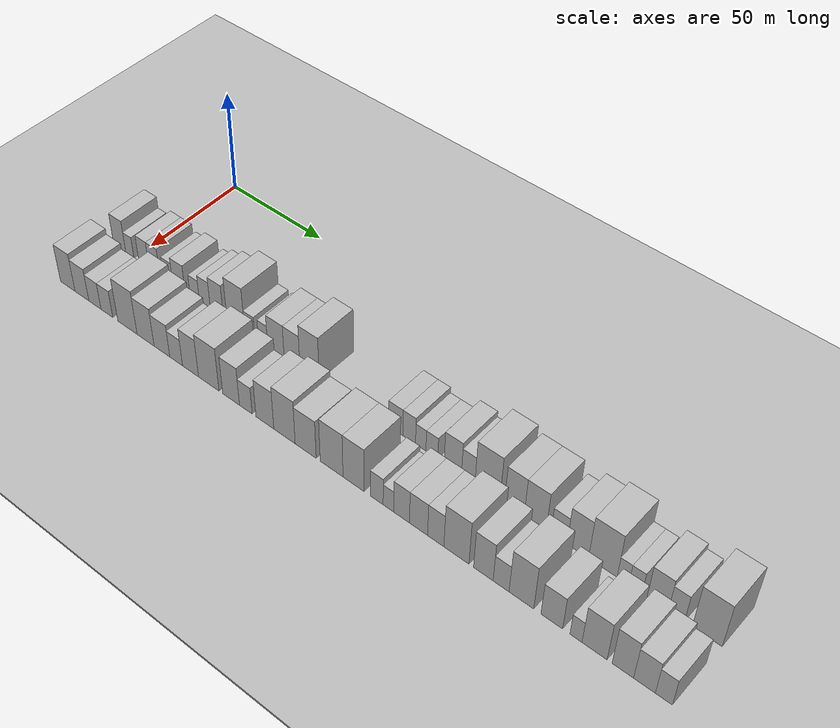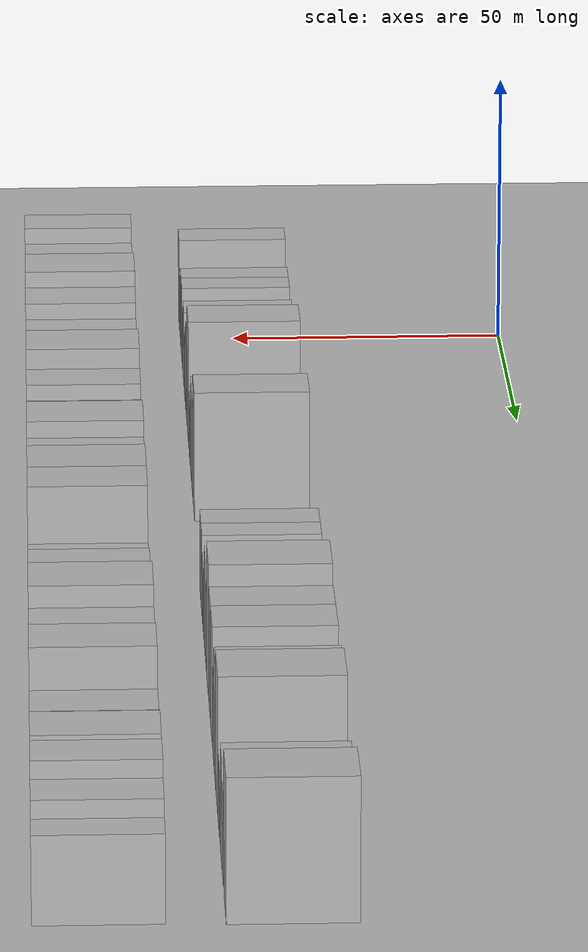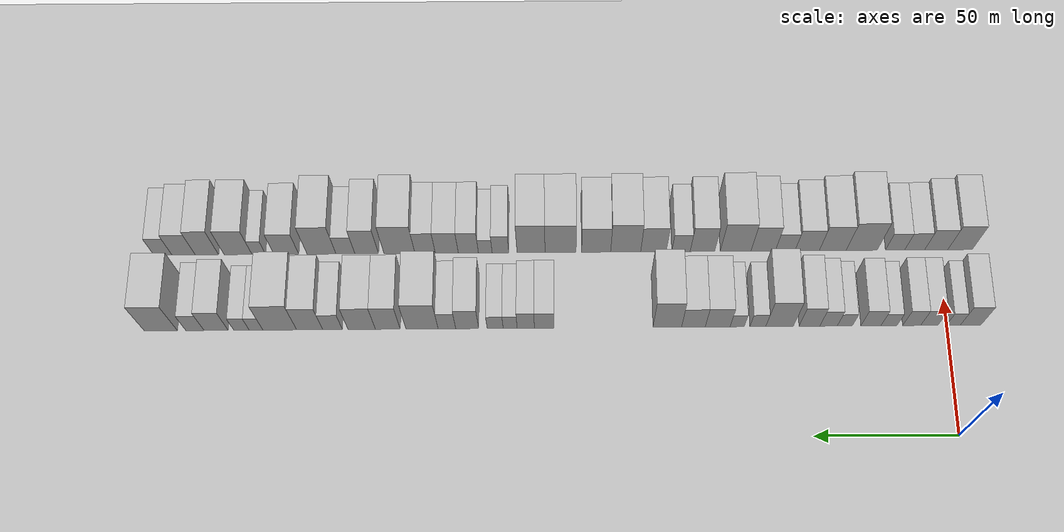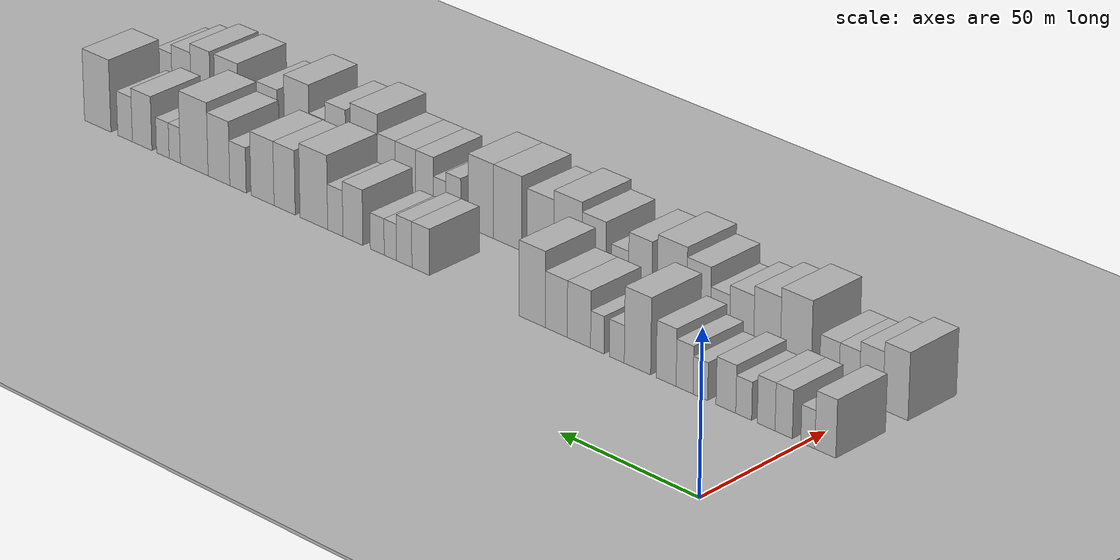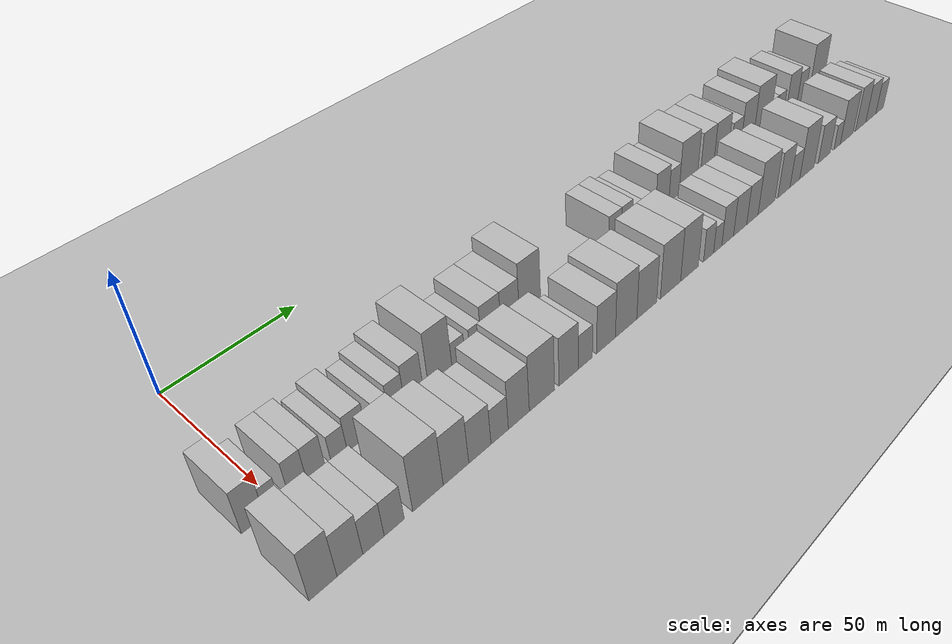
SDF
<sdf version="1.6">
 <world name="default">
  <include><name>ground_plane_1</name><uri>model://HANNAS_ground_plane</uri></include>
  <include>
   <name>ground_plane_2</name>
   <uri>model://HANNAS_ground_plane</uri>
   <pose>100 0 0  0 0 0</pose>
  </include>
  <model name="building_35">
   <static>1</static>
   <pose>50.0000 -8.4018 0 0.000000 0.000000 0.000000</pose>
   <link name="link">
    <pose>0 0 9.00 0 0 0</pose>
    <collision name="collision"><geometry><box><size>20.0000 7.3455 18.0000</size></box></geometry></collision>
    <visual name="visual">
     <cast_shadows>0</cast_shadows>
     <geometry><box><size>20.0000 7.3455 18.0000</size></box></geometry>
     <material>
      <script>
       <uri>model://HANNAS_wall/materials/scripts</uri>
       <uri>model://HANNAS_wall/materials/textures</uri>
       <name>vrc/HANNAS_wall</name>
      </script>
     </material>
    </visual>
   </link>
  </model>
  <model name="building_36">
   <static>1</static>
   <pose>50.0000 -2.2565 0 0.000000 0.000000 0.000000</pose>
   <link name="link">
    <pose>0 0 6.00 0 0 0</pose>
    <collision name="collision"><geometry><box><size>20.0000 4.9450 12.0000</size></box></geometry></collision>
    <visual name="visual">
     <cast_shadows>0</cast_shadows>
     <geometry><box><size>20.0000 4.9450 12.0000</size></box></geometry>
     <material>
      <script>
       <uri>model://HANNAS_wall/materials/scripts</uri>
       <uri>model://HANNAS_wall/materials/textures</uri>
       <name>vrc/HANNAS_wall</name>
      </script>
     </material>
    </visual>
   </link>
  </model>
  <model name="building_37">
   <static>1</static>
   <pose>50.0000 6.2791 0 0.000000 0.000000 0.000000</pose>
   <link name="link">
    <pose>0 0 7.50 0 0 0</pose>
    <collision name="collision"><geometry><box><size>20.0000 6.1263 15.0000</size></box></geometry></collision>
    <visual name="visual">
     <cast_shadows>0</cast_shadows>
     <geometry><box><size>20.0000 6.1263 15.0000</size></box></geometry>
     <material>
      <script>
       <uri>model://HANNAS_wall/materials/scripts</uri>
       <uri>model://HANNAS_wall/materials/textures</uri>
       <name>vrc/HANNAS_wall</name>
      </script>
     </material>
    </visual>
   </link>
  </model>
  <model name="building_38">
   <static>1</static>
   <pose>50.0000 12.5242 0 0.000000 0.000000 0.000000</pose>
   <link name="link">
    <pose>0 0 7.50 0 0 0</pose>
    <collision name="collision"><geometry><box><size>20.0000 6.3640 15.0000</size></box></geometry></collision>
    <visual name="visual">
     <cast_shadows>0</cast_shadows>
     <geometry><box><size>20.0000 6.3640 15.0000</size></box></geometry>
     <material>
      <script>
       <uri>model://HANNAS_wall/materials/scripts</uri>
       <uri>model://HANNAS_wall/materials/textures</uri>
       <name>vrc/HANNAS_wall</name>
      </script>
     </material>
    </visual>
   </link>
  </model>
  <model name="building_39">
   <static>1</static>
   <pose>50.0000 20.5519 0 0.000000 0.000000 0.000000</pose>
   <link name="link">
    <pose>0 0 6.00 0 0 0</pose>
    <collision name="collision"><geometry><box><size>20.0000 5.6913 12.0000</size></box></geometry></collision>
    <visual name="visual">
     <cast_shadows>0</cast_shadows>
     <geometry><box><size>20.0000 5.6913 12.0000</size></box></geometry>
     <material>
      <script>
       <uri>model://HANNAS_wall/materials/scripts</uri>
       <uri>model://HANNAS_wall/materials/textures</uri>
       <name>vrc/HANNAS_wall</name>
      </script>
     </material>
    </visual>
   </link>
  </model>
  <model name="building_40">
   <static>1</static>
   <pose>50.0000 26.9667 0 0.000000 0.000000 0.000000</pose>
   <link name="link">
    <pose>0 0 7.50 0 0 0</pose>
    <collision name="collision"><geometry><box><size>20.0000 7.1382 15.0000</size></box></geometry></collision>
    <visual name="visual">
     <cast_shadows>0</cast_shadows>
     <geometry><box><size>20.0000 7.1382 15.0000</size></box></geometry>
     <material>
      <script>
       <uri>model://HANNAS_wall/materials/scripts</uri>
       <uri>model://HANNAS_wall/materials/textures</uri>
       <name>vrc/HANNAS_wall</name>
      </script>
     </material>
    </visual>
   </link>
  </model>
  <model name="building_41">
   <static>1</static>
   <pose>50.0000 36.2160 0 0.000000 0.000000 0.000000</pose>
   <link name="link">
    <pose>0 0 6.00 0 0 0</pose>
    <collision name="collision"><geometry><box><size>20.0000 5.3605 12.0000</size></box></geometry></collision>
    <visual name="visual">
     <cast_shadows>0</cast_shadows>
     <geometry><box><size>20.0000 5.3605 12.0000</size></box></geometry>
     <material>
      <script>
       <uri>model://HANNAS_wall/materials/scripts</uri>
       <uri>model://HANNAS_wall/materials/textures</uri>
       <name>vrc/HANNAS_wall</name>
      </script>
     </material>
    </visual>
   </link>
  </model>
  <model name="building_42">
   <static>1</static>
   <pose>50.0000 41.9826 0 0.000000 0.000000 0.000000</pose>
   <link name="link">
    <pose>0 0 7.50 0 0 0</pose>
    <collision name="collision"><geometry><box><size>20.0000 6.1726 15.0000</size></box></geometry></collision>
    <visual name="visual">
     <cast_shadows>0</cast_shadows>
     <geometry><box><size>20.0000 6.1726 15.0000</size></box></geometry>
     <material>
      <script>
       <uri>model://HANNAS_wall/materials/scripts</uri>
       <uri>model://HANNAS_wall/materials/textures</uri>
       <name>vrc/HANNAS_wall</name>
      </script>
     </material>
    </visual>
   </link>
  </model>
  <model name="building_43">
   <static>1</static>
   <pose>50.0000 48.7520 0 0.000000 0.000000 0.000000</pose>
   <link name="link">
    <pose>0 0 9.00 0 0 0</pose>
    <collision name="collision"><geometry><box><size>20.0000 7.3661 18.0000</size></box></geometry></collision>
    <visual name="visual">
     <cast_shadows>0</cast_shadows>
     <geometry><box><size>20.0000 7.3661 18.0000</size></box></geometry>
     <material>
      <script>
       <uri>model://HANNAS_wall/materials/scripts</uri>
       <uri>model://HANNAS_wall/materials/textures</uri>
       <name>vrc/HANNAS_wall</name>
      </script>
     </material>
    </visual>
   </link>
  </model>
  <model name="building_44">
   <static>1</static>
   <pose>50.0000 59.3353 0 0.000000 0.000000 0.000000</pose>
   <link name="link">
    <pose>0 0 12.00 0 0 0</pose>
    <collision name="collision"><geometry><box><size>20.0000 9.8005 24.0000</size></box></geometry></collision>
    <visual name="visual">
     <cast_shadows>0</cast_shadows>
     <geometry><box><size>20.0000 9.8005 24.0000</size></box></geometry>
     <material>
      <script>
       <uri>model://HANNAS_wall/materials/scripts</uri>
       <uri>model://HANNAS_wall/materials/textures</uri>
       <name>vrc/HANNAS_wall</name>
      </script>
     </material>
    </visual>
   </link>
  </model>
  <model name="building_45">
   <static>1</static>
   <pose>50.0000 67.0383 0 0.000000 0.000000 0.000000</pose>
   <link name="link">
    <pose>0 0 6.00 0 0 0</pose>
    <collision name="collision"><geometry><box><size>20.0000 5.6055 12.0000</size></box></geometry></collision>
    <visual name="visual">
     <cast_shadows>0</cast_shadows>
     <geometry><box><size>20.0000 5.6055 12.0000</size></box></geometry>
     <material>
      <script>
       <uri>model://HANNAS_wall/materials/scripts</uri>
       <uri>model://HANNAS_wall/materials/textures</uri>
       <name>vrc/HANNAS_wall</name>
      </script>
     </material>
    </visual>
   </link>
  </model>
  <model name="building_46">
   <static>1</static>
   <pose>50.0000 74.3523 0 0.000000 0.000000 0.000000</pose>
   <link name="link">
    <pose>0 0 6.00 0 0 0</pose>
    <collision name="collision"><geometry><box><size>20.0000 5.0224 12.0000</size></box></geometry></collision>
    <visual name="visual">
     <cast_shadows>0</cast_shadows>
     <geometry><box><size>20.0000 5.0224 12.0000</size></box></geometry>
     <material>
      <script>
       <uri>model://HANNAS_wall/materials/scripts</uri>
       <uri>model://HANNAS_wall/materials/textures</uri>
       <name>vrc/HANNAS_wall</name>
      </script>
     </material>
    </visual>
   </link>
  </model>
  <model name="building_47">
   <static>1</static>
   <pose>50.0000 81.2639 0 0.000000 0.000000 0.000000</pose>
   <link name="link">
    <pose>0 0 9.00 0 0 0</pose>
    <collision name="collision"><geometry><box><size>20.0000 8.8008 18.0000</size></box></geometry></collision>
    <visual name="visual">
     <cast_shadows>0</cast_shadows>
     <geometry><box><size>20.0000 8.8008 18.0000</size></box></geometry>
     <material>
      <script>
       <uri>model://HANNAS_wall/materials/scripts</uri>
       <uri>model://HANNAS_wall/materials/textures</uri>
       <name>vrc/HANNAS_wall</name>
      </script>
     </material>
    </visual>
   </link>
  </model>
  <model name="building_48">
   <static>1</static>
   <pose>50.0000 89.8656 0 0.000000 0.000000 0.000000</pose>
   <link name="link">
    <pose>0 0 9.00 0 0 0</pose>
    <collision name="collision"><geometry><box><size>20.0000 8.4025 18.0000</size></box></geometry></collision>
    <visual name="visual">
     <cast_shadows>0</cast_shadows>
     <geometry><box><size>20.0000 8.4025 18.0000</size></box></geometry>
     <material>
      <script>
       <uri>model://HANNAS_wall/materials/scripts</uri>
       <uri>model://HANNAS_wall/materials/textures</uri>
       <name>vrc/HANNAS_wall</name>
      </script>
     </material>
    </visual>
   </link>
  </model>
  <model name="building_49">
   <static>1</static>
   <pose>50.0000 99.1146 0 0.000000 0.000000 0.000000</pose>
   <link name="link">
    <pose>0 0 12.00 0 0 0</pose>
    <collision name="collision"><geometry><box><size>20.0000 10.0955 24.0000</size></box></geometry></collision>
    <visual name="visual">
     <cast_shadows>0</cast_shadows>
     <geometry><box><size>20.0000 10.0955 24.0000</size></box></geometry>
     <material>
      <script>
       <uri>model://HANNAS_wall/materials/scripts</uri>
       <uri>model://HANNAS_wall/materials/textures</uri>
       <name>vrc/HANNAS_wall</name>
      </script>
     </material>
    </visual>
   </link>
  </model>
  <model name="building_50">
   <static>1</static>
   <pose>50.0000 142.6210 0 0.000000 0.000000 0.000000</pose>
   <link name="link">
    <pose>0 0 7.50 0 0 0</pose>
    <collision name="collision"><geometry><box><size>20.0000 6.9724 15.0000</size></box></geometry></collision>
    <visual name="visual">
     <cast_shadows>0</cast_shadows>
     <geometry><box><size>20.0000 6.9724 15.0000</size></box></geometry>
     <material>
      <script>
       <uri>model://HANNAS_wall/materials/scripts</uri>
       <uri>model://HANNAS_wall/materials/textures</uri>
       <name>vrc/HANNAS_wall</name>
      </script>
     </material>
    </visual>
   </link>
  </model>
  <model name="building_51">
   <static>1</static>
   <pose>50.0000 149.1636 0 0.000000 0.000000 0.000000</pose>
   <link name="link">
    <pose>0 0 7.50 0 0 0</pose>
    <collision name="collision"><geometry><box><size>20.0000 6.1128 15.0000</size></box></geometry></collision>
    <visual name="visual">
     <cast_shadows>0</cast_shadows>
     <geometry><box><size>20.0000 6.1128 15.0000</size></box></geometry>
     <material>
      <script>
       <uri>model://HANNAS_wall/materials/scripts</uri>
       <uri>model://HANNAS_wall/materials/textures</uri>
       <name>vrc/HANNAS_wall</name>
      </script>
     </material>
    </visual>
   </link>
  </model>
  <model name="building_52">
   <static>1</static>
   <pose>50.0000 154.7059 0 0.000000 0.000000 0.000000</pose>
   <link name="link">
    <pose>0 0 6.00 0 0 0</pose>
    <collision name="collision"><geometry><box><size>20.0000 4.9718 12.0000</size></box></geometry></collision>
    <visual name="visual">
     <cast_shadows>0</cast_shadows>
     <geometry><box><size>20.0000 4.9718 12.0000</size></box></geometry>
     <material>
      <script>
       <uri>model://HANNAS_wall/materials/scripts</uri>
       <uri>model://HANNAS_wall/materials/textures</uri>
       <name>vrc/HANNAS_wall</name>
      </script>
     </material>
    </visual>
   </link>
  </model>
  <model name="building_53">
   <static>1</static>
   <pose>50.0000 160.0148 0 0.000000 0.000000 0.000000</pose>
   <link name="link">
    <pose>0 0 6.00 0 0 0</pose>
    <collision name="collision"><geometry><box><size>20.0000 5.6458 12.0000</size></box></geometry></collision>
    <visual name="visual">
     <cast_shadows>0</cast_shadows>
     <geometry><box><size>20.0000 5.6458 12.0000</size></box></geometry>
     <material>
      <script>
       <uri>model://HANNAS_wall/materials/scripts</uri>
       <uri>model://HANNAS_wall/materials/textures</uri>
       <name>vrc/HANNAS_wall</name>
      </script>
     </material>
    </visual>
   </link>
  </model>
  <model name="building_54">
   <static>1</static>
   <pose>50.0000 169.8878 0 0.000000 0.000000 0.000000</pose>
   <link name="link">
    <pose>0 0 9.00 0 0 0</pose>
    <collision name="collision"><geometry><box><size>20.0000 8.1002 18.0000</size></box></geometry></collision>
    <visual name="visual">
     <cast_shadows>0</cast_shadows>
     <geometry><box><size>20.0000 8.1002 18.0000</size></box></geometry>
     <material>
      <script>
       <uri>model://HANNAS_wall/materials/scripts</uri>
       <uri>model://HANNAS_wall/materials/textures</uri>
       <name>vrc/HANNAS_wall</name>
      </script>
     </material>
    </visual>
   </link>
  </model>
  <model name="building_55">
   <static>1</static>
   <pose>50.0000 177.0478 0 0.000000 0.000000 0.000000</pose>
   <link name="link">
    <pose>0 0 7.50 0 0 0</pose>
    <collision name="collision"><geometry><box><size>20.0000 6.2198 15.0000</size></box></geometry></collision>
    <visual name="visual">
     <cast_shadows>0</cast_shadows>
     <geometry><box><size>20.0000 6.2198 15.0000</size></box></geometry>
     <material>
      <script>
       <uri>model://HANNAS_wall/materials/scripts</uri>
       <uri>model://HANNAS_wall/materials/textures</uri>
       <name>vrc/HANNAS_wall</name>
      </script>
     </material>
    </visual>
   </link>
  </model>
  <model name="building_56">
   <static>1</static>
   <pose>50.0000 185.8638 0 0.000000 0.000000 0.000000</pose>
   <link name="link">
    <pose>0 0 12.00 0 0 0</pose>
    <collision name="collision"><geometry><box><size>20.0000 11.4121 24.0000</size></box></geometry></collision>
    <visual name="visual">
     <cast_shadows>0</cast_shadows>
     <geometry><box><size>20.0000 11.4121 24.0000</size></box></geometry>
     <material>
      <script>
       <uri>model://HANNAS_wall/materials/scripts</uri>
       <uri>model://HANNAS_wall/materials/textures</uri>
       <name>vrc/HANNAS_wall</name>
      </script>
     </material>
    </visual>
   </link>
  </model>
  <model name="building_57">
   <static>1</static>
   <pose>50.0000 197.9600 0 0.000000 0.000000 0.000000</pose>
   <link name="link">
    <pose>0 0 10.50 0 0 0</pose>
    <collision name="collision"><geometry><box><size>20.0000 8.7803 21.0000</size></box></geometry></collision>
    <visual name="visual">
     <cast_shadows>0</cast_shadows>
     <geometry><box><size>20.0000 8.7803 21.0000</size></box></geometry>
     <material>
      <script>
       <uri>model://HANNAS_wall/materials/scripts</uri>
       <uri>model://HANNAS_wall/materials/textures</uri>
       <name>vrc/HANNAS_wall</name>
      </script>
     </material>
    </visual>
   </link>
  </model>
  <model name="building_58">
   <static>1</static>
   <pose>50.0000 207.1972 0 0.000000 0.000000 0.000000</pose>
   <link name="link">
    <pose>0 0 10.50 0 0 0</pose>
    <collision name="collision"><geometry><box><size>20.0000 9.6941 21.0000</size></box></geometry></collision>
    <visual name="visual">
     <cast_shadows>0</cast_shadows>
     <geometry><box><size>20.0000 9.6941 21.0000</size></box></geometry>
     <material>
      <script>
       <uri>model://HANNAS_wall/materials/scripts</uri>
       <uri>model://HANNAS_wall/materials/textures</uri>
       <name>vrc/HANNAS_wall</name>
      </script>
     </material>
    </visual>
   </link>
  </model>
  <model name="building_59">
   <static>1</static>
   <pose>50.0000 217.5171 0 0.000000 0.000000 0.000000</pose>
   <link name="link">
    <pose>0 0 7.50 0 0 0</pose>
    <collision name="collision"><geometry><box><size>20.0000 6.9457 15.0000</size></box></geometry></collision>
    <visual name="visual">
     <cast_shadows>0</cast_shadows>
     <geometry><box><size>20.0000 6.9457 15.0000</size></box></geometry>
     <material>
      <script>
       <uri>model://HANNAS_wall/materials/scripts</uri>
       <uri>model://HANNAS_wall/materials/textures</uri>
       <name>vrc/HANNAS_wall</name>
      </script>
     </material>
    </visual>
   </link>
  </model>
  <model name="building_60">
   <static>1</static>
   <pose>50.0000 225.5878 0 0.000000 0.000000 0.000000</pose>
   <link name="link">
    <pose>0 0 10.50 0 0 0</pose>
    <collision name="collision"><geometry><box><size>20.0000 9.1957 21.0000</size></box></geometry></collision>
    <visual name="visual">
     <cast_shadows>0</cast_shadows>
     <geometry><box><size>20.0000 9.1957 21.0000</size></box></geometry>
     <material>
      <script>
       <uri>model://HANNAS_wall/materials/scripts</uri>
       <uri>model://HANNAS_wall/materials/textures</uri>
       <name>vrc/HANNAS_wall</name>
      </script>
     </material>
    </visual>
   </link>
  </model>
  <model name="building_61">
   <static>1</static>
   <pose>50.0000 236.1583 0 0.000000 0.000000 0.000000</pose>
   <link name="link">
    <pose>0 0 12.00 0 0 0</pose>
    <collision name="collision"><geometry><box><size>20.0000 11.9453 24.0000</size></box></geometry></collision>
    <visual name="visual">
     <cast_shadows>0</cast_shadows>
     <geometry><box><size>20.0000 11.9453 24.0000</size></box></geometry>
     <material>
      <script>
       <uri>model://HANNAS_wall/materials/scripts</uri>
       <uri>model://HANNAS_wall/materials/textures</uri>
       <name>vrc/HANNAS_wall</name>
      </script>
     </material>
    </visual>
   </link>
  </model>
  <model name="building_62">
   <static>1</static>
   <pose>50.0000 244.5400 0 0.000000 0.000000 0.000000</pose>
   <link name="link">
    <pose>0 0 6.00 0 0 0</pose>
    <collision name="collision"><geometry><box><size>20.0000 4.8182 12.0000</size></box></geometry></collision>
    <visual name="visual">
     <cast_shadows>0</cast_shadows>
     <geometry><box><size>20.0000 4.8182 12.0000</size></box></geometry>
     <material>
      <script>
       <uri>model://HANNAS_wall/materials/scripts</uri>
       <uri>model://HANNAS_wall/materials/textures</uri>
       <name>vrc/HANNAS_wall</name>
      </script>
     </material>
    </visual>
   </link>
  </model>
  <model name="building_63">
   <static>1</static>
   <pose>50.0000 249.6836 0 0.000000 0.000000 0.000000</pose>
   <link name="link">
    <pose>0 0 6.00 0 0 0</pose>
    <collision name="collision"><geometry><box><size>20.0000 5.4691 12.0000</size></box></geometry></collision>
    <visual name="visual">
     <cast_shadows>0</cast_shadows>
     <geometry><box><size>20.0000 5.4691 12.0000</size></box></geometry>
     <material>
      <script>
       <uri>model://HANNAS_wall/materials/scripts</uri>
       <uri>model://HANNAS_wall/materials/textures</uri>
       <name>vrc/HANNAS_wall</name>
      </script>
     </material>
    </visual>
   </link>
  </model>
  <model name="building_64">
   <static>1</static>
   <pose>50.0000 258.6771 0 0.000000 0.000000 0.000000</pose>
   <link name="link">
    <pose>0 0 9.00 0 0 0</pose>
    <collision name="collision"><geometry><box><size>20.0000 8.5179 18.0000</size></box></geometry></collision>
    <visual name="visual">
     <cast_shadows>0</cast_shadows>
     <geometry><box><size>20.0000 8.5179 18.0000</size></box></geometry>
     <material>
      <script>
       <uri>model://HANNAS_wall/materials/scripts</uri>
       <uri>model://HANNAS_wall/materials/textures</uri>
       <name>vrc/HANNAS_wall</name>
      </script>
     </material>
    </visual>
   </link>
  </model>
  <model name="building_65">
   <static>1</static>
   <pose>50.0000 266.1465 0 0.000000 0.000000 0.000000</pose>
   <link name="link">
    <pose>0 0 7.50 0 0 0</pose>
    <collision name="collision"><geometry><box><size>20.0000 6.4209 15.0000</size></box></geometry></collision>
    <visual name="visual">
     <cast_shadows>0</cast_shadows>
     <geometry><box><size>20.0000 6.4209 15.0000</size></box></geometry>
     <material>
      <script>
       <uri>model://HANNAS_wall/materials/scripts</uri>
       <uri>model://HANNAS_wall/materials/textures</uri>
       <name>vrc/HANNAS_wall</name>
      </script>
     </material>
    </visual>
   </link>
  </model>
  <model name="building_66">
   <static>1</static>
   <pose>50.0000 278.1975 0 0.000000 0.000000 0.000000</pose>
   <link name="link">
    <pose>0 0 12.00 0 0 0</pose>
    <collision name="collision"><geometry><box><size>20.0000 11.6810 24.0000</size></box></geometry></collision>
    <visual name="visual">
     <cast_shadows>0</cast_shadows>
     <geometry><box><size>20.0000 11.6810 24.0000</size></box></geometry>
     <material>
      <script>
       <uri>model://HANNAS_wall/materials/scripts</uri>
       <uri>model://HANNAS_wall/materials/textures</uri>
       <name>vrc/HANNAS_wall</name>
      </script>
     </material>
    </visual>
   </link>
  </model>
  <model name="building_97">
   <static>1</static>
   <pose>79.0000 -7.8592 0 0.000000 0.000000 0.000000</pose>
   <link name="link">
    <pose>0 0 10.50 0 0 0</pose>
    <collision name="collision"><geometry><box><size>20.0000 8.8531 21.0000</size></box></geometry></collision>
    <visual name="visual">
     <cast_shadows>0</cast_shadows>
     <geometry><box><size>20.0000 8.8531 21.0000</size></box></geometry>
     <material>
      <script>
       <uri>model://HANNAS_wall/materials/scripts</uri>
       <uri>model://HANNAS_wall/materials/textures</uri>
       <name>vrc/HANNAS_wall</name>
      </script>
     </material>
    </visual>
   </link>
  </model>
  <model name="building_98">
   <static>1</static>
   <pose>79.0000 0.7653 0 0.000000 0.000000 0.000000</pose>
   <link name="link">
    <pose>0 0 9.00 0 0 0</pose>
    <collision name="collision"><geometry><box><size>20.0000 8.3959 18.0000</size></box></geometry></collision>
    <visual name="visual">
     <cast_shadows>0</cast_shadows>
     <geometry><box><size>20.0000 8.3959 18.0000</size></box></geometry>
     <material>
      <script>
       <uri>model://HANNAS_wall/materials/scripts</uri>
       <uri>model://HANNAS_wall/materials/textures</uri>
       <name>vrc/HANNAS_wall</name>
      </script>
     </material>
    </visual>
   </link>
  </model>
  <model name="building_99">
   <static>1</static>
   <pose>79.0000 8.5710 0 0.000000 0.000000 0.000000</pose>
   <link name="link">
    <pose>0 0 7.50 0 0 0</pose>
    <collision name="collision"><geometry><box><size>20.0000 7.2154 15.0000</size></box></geometry></collision>
    <visual name="visual">
     <cast_shadows>0</cast_shadows>
     <geometry><box><size>20.0000 7.2154 15.0000</size></box></geometry>
     <material>
      <script>
       <uri>model://HANNAS_wall/materials/scripts</uri>
       <uri>model://HANNAS_wall/materials/textures</uri>
       <name>vrc/HANNAS_wall</name>
      </script>
     </material>
    </visual>
   </link>
  </model>
  <model name="building_100">
   <static>1</static>
   <pose>79.0000 15.6614 0 0.000000 0.000000 0.000000</pose>
   <link name="link">
    <pose>0 0 7.50 0 0 0</pose>
    <collision name="collision"><geometry><box><size>20.0000 6.9654 15.0000</size></box></geometry></collision>
    <visual name="visual">
     <cast_shadows>0</cast_shadows>
     <geometry><box><size>20.0000 6.9654 15.0000</size></box></geometry>
     <material>
      <script>
       <uri>model://HANNAS_wall/materials/scripts</uri>
       <uri>model://HANNAS_wall/materials/textures</uri>
       <name>vrc/HANNAS_wall</name>
      </script>
     </material>
    </visual>
   </link>
  </model>
  <model name="building_101">
   <static>1</static>
   <pose>79.0000 27.7389 0 0.000000 0.000000 0.000000</pose>
   <link name="link">
    <pose>0 0 12.00 0 0 0</pose>
    <collision name="collision"><geometry><box><size>20.0000 11.1896 24.0000</size></box></geometry></collision>
    <visual name="visual">
     <cast_shadows>0</cast_shadows>
     <geometry><box><size>20.0000 11.1896 24.0000</size></box></geometry>
     <material>
      <script>
       <uri>model://HANNAS_wall/materials/scripts</uri>
       <uri>model://HANNAS_wall/materials/textures</uri>
       <name>vrc/HANNAS_wall</name>
      </script>
     </material>
    </visual>
   </link>
  </model>
  <model name="building_102">
   <static>1</static>
   <pose>79.0000 38.2096 0 0.000000 0.000000 0.000000</pose>
   <link name="link">
    <pose>0 0 10.50 0 0 0</pose>
    <collision name="collision"><geometry><box><size>20.0000 9.7517 21.0000</size></box></geometry></collision>
    <visual name="visual">
     <cast_shadows>0</cast_shadows>
     <geometry><box><size>20.0000 9.7517 21.0000</size></box></geometry>
     <material>
      <script>
       <uri>model://HANNAS_wall/materials/scripts</uri>
       <uri>model://HANNAS_wall/materials/textures</uri>
       <name>vrc/HANNAS_wall</name>
      </script>
     </material>
    </visual>
   </link>
  </model>
  <model name="building_103">
   <static>1</static>
   <pose>79.0000 47.4972 0 0.000000 0.000000 0.000000</pose>
   <link name="link">
    <pose>0 0 9.00 0 0 0</pose>
    <collision name="collision"><geometry><box><size>20.0000 8.8235 18.0000</size></box></geometry></collision>
    <visual name="visual">
     <cast_shadows>0</cast_shadows>
     <geometry><box><size>20.0000 8.8235 18.0000</size></box></geometry>
     <material>
      <script>
       <uri>model://HANNAS_wall/materials/scripts</uri>
       <uri>model://HANNAS_wall/materials/textures</uri>
       <name>vrc/HANNAS_wall</name>
      </script>
     </material>
    </visual>
   </link>
  </model>
  <model name="building_104">
   <static>1</static>
   <pose>79.0000 55.4699 0 0.000000 0.000000 0.000000</pose>
   <link name="link">
    <pose>0 0 7.50 0 0 0</pose>
    <collision name="collision"><geometry><box><size>20.0000 7.1220 15.0000</size></box></geometry></collision>
    <visual name="visual">
     <cast_shadows>0</cast_shadows>
     <geometry><box><size>20.0000 7.1220 15.0000</size></box></geometry>
     <material>
      <script>
       <uri>model://HANNAS_wall/materials/scripts</uri>
       <uri>model://HANNAS_wall/materials/textures</uri>
       <name>vrc/HANNAS_wall</name>
      </script>
     </material>
    </visual>
   </link>
  </model>
  <model name="building_105">
   <static>1</static>
   <pose>79.0000 63.4472 0 0.000000 0.000000 0.000000</pose>
   <link name="link">
    <pose>0 0 10.50 0 0 0</pose>
    <collision name="collision"><geometry><box><size>20.0000 8.8326 21.0000</size></box></geometry></collision>
    <visual name="visual">
     <cast_shadows>0</cast_shadows>
     <geometry><box><size>20.0000 8.8326 21.0000</size></box></geometry>
     <material>
      <script>
       <uri>model://HANNAS_wall/materials/scripts</uri>
       <uri>model://HANNAS_wall/materials/textures</uri>
       <name>vrc/HANNAS_wall</name>
      </script>
     </material>
    </visual>
   </link>
  </model>
  <model name="building_106">
   <static>1</static>
   <pose>79.0000 73.4060 0 0.000000 0.000000 0.000000</pose>
   <link name="link">
    <pose>0 0 12.00 0 0 0</pose>
    <collision name="collision"><geometry><box><size>20.0000 11.0851 24.0000</size></box></geometry></collision>
    <visual name="visual">
     <cast_shadows>0</cast_shadows>
     <geometry><box><size>20.0000 11.0851 24.0000</size></box></geometry>
     <material>
      <script>
       <uri>model://HANNAS_wall/materials/scripts</uri>
       <uri>model://HANNAS_wall/materials/textures</uri>
       <name>vrc/HANNAS_wall</name>
      </script>
     </material>
    </visual>
   </link>
  </model>
  <model name="building_107">
   <static>1</static>
   <pose>79.0000 85.3860 0 0.000000 0.000000 0.000000</pose>
   <link name="link">
    <pose>0 0 10.50 0 0 0</pose>
    <collision name="collision"><geometry><box><size>20.0000 8.8749 21.0000</size></box></geometry></collision>
    <visual name="visual">
     <cast_shadows>0</cast_shadows>
     <geometry><box><size>20.0000 8.8749 21.0000</size></box></geometry>
     <material>
      <script>
       <uri>model://HANNAS_wall/materials/scripts</uri>
       <uri>model://HANNAS_wall/materials/textures</uri>
       <name>vrc/HANNAS_wall</name>
      </script>
     </material>
    </visual>
   </link>
  </model>
  <model name="building_108">
   <static>1</static>
   <pose>79.0000 93.1438 0 0.000000 0.000000 0.000000</pose>
   <link name="link">
    <pose>0 0 7.50 0 0 0</pose>
    <collision name="collision"><geometry><box><size>20.0000 6.6408 15.0000</size></box></geometry></collision>
    <visual name="visual">
     <cast_shadows>0</cast_shadows>
     <geometry><box><size>20.0000 6.6408 15.0000</size></box></geometry>
     <material>
      <script>
       <uri>model://HANNAS_wall/materials/scripts</uri>
       <uri>model://HANNAS_wall/materials/textures</uri>
       <name>vrc/HANNAS_wall</name>
      </script>
     </material>
    </visual>
   </link>
  </model>
  <model name="building_109">
   <static>1</static>
   <pose>79.0000 103.0847 0 0.000000 0.000000 0.000000</pose>
   <link name="link">
    <pose>0 0 10.50 0 0 0</pose>
    <collision name="collision"><geometry><box><size>20.0000 9.2410 21.0000</size></box></geometry></collision>
    <visual name="visual">
     <cast_shadows>0</cast_shadows>
     <geometry><box><size>20.0000 9.2410 21.0000</size></box></geometry>
     <material>
      <script>
       <uri>model://HANNAS_wall/materials/scripts</uri>
       <uri>model://HANNAS_wall/materials/textures</uri>
       <name>vrc/HANNAS_wall</name>
      </script>
     </material>
    </visual>
   </link>
  </model>
  <model name="building_110">
   <static>1</static>
   <pose>79.0000 113.1463 0 0.000000 0.000000 0.000000</pose>
   <link name="link">
    <pose>0 0 12.00 0 0 0</pose>
    <collision name="collision"><geometry><box><size>20.0000 10.8822 24.0000</size></box></geometry></collision>
    <visual name="visual">
     <cast_shadows>0</cast_shadows>
     <geometry><box><size>20.0000 10.8822 24.0000</size></box></geometry>
     <material>
      <script>
       <uri>model://HANNAS_wall/materials/scripts</uri>
       <uri>model://HANNAS_wall/materials/textures</uri>
       <name>vrc/HANNAS_wall</name>
      </script>
     </material>
    </visual>
   </link>
  </model>
  <model name="building_111">
   <static>1</static>
   <pose>79.0000 123.8330 0 0.000000 0.000000 0.000000</pose>
   <link name="link">
    <pose>0 0 10.50 0 0 0</pose>
    <collision name="collision"><geometry><box><size>20.0000 10.4914 21.0000</size></box></geometry></collision>
    <visual name="visual">
     <cast_shadows>0</cast_shadows>
     <geometry><box><size>20.0000 10.4914 21.0000</size></box></geometry>
     <material>
      <script>
       <uri>model://HANNAS_wall/materials/scripts</uri>
       <uri>model://HANNAS_wall/materials/textures</uri>
       <name>vrc/HANNAS_wall</name>
      </script>
     </material>
    </visual>
   </link>
  </model>
  <model name="building_112">
   <static>1</static>
   <pose>79.0000 136.6675 0 0.000000 0.000000 0.000000</pose>
   <link name="link">
    <pose>0 0 12.00 0 0 0</pose>
    <collision name="collision"><geometry><box><size>20.0000 11.1775 24.0000</size></box></geometry></collision>
    <visual name="visual">
     <cast_shadows>0</cast_shadows>
     <geometry><box><size>20.0000 11.1775 24.0000</size></box></geometry>
     <material>
      <script>
       <uri>model://HANNAS_wall/materials/scripts</uri>
       <uri>model://HANNAS_wall/materials/textures</uri>
       <name>vrc/HANNAS_wall</name>
      </script>
     </material>
    </visual>
   </link>
  </model>
  <model name="building_113">
   <static>1</static>
   <pose>79.0000 147.3253 0 0.000000 0.000000 0.000000</pose>
   <link name="link">
    <pose>0 0 12.00 0 0 0</pose>
    <collision name="collision"><geometry><box><size>20.0000 10.1382 24.0000</size></box></geometry></collision>
    <visual name="visual">
     <cast_shadows>0</cast_shadows>
     <geometry><box><size>20.0000 10.1382 24.0000</size></box></geometry>
     <material>
      <script>
       <uri>model://HANNAS_wall/materials/scripts</uri>
       <uri>model://HANNAS_wall/materials/textures</uri>
       <name>vrc/HANNAS_wall</name>
      </script>
     </material>
    </visual>
   </link>
  </model>
  <model name="building_114">
   <static>1</static>
   <pose>79.0000 158.3955 0 0.000000 0.000000 0.000000</pose>
   <link name="link">
    <pose>0 0 7.50 0 0 0</pose>
    <collision name="collision"><geometry><box><size>20.0000 6.0021 15.0000</size></box></geometry></collision>
    <visual name="visual">
     <cast_shadows>0</cast_shadows>
     <geometry><box><size>20.0000 6.0021 15.0000</size></box></geometry>
     <material>
      <script>
       <uri>model://HANNAS_wall/materials/scripts</uri>
       <uri>model://HANNAS_wall/materials/textures</uri>
       <name>vrc/HANNAS_wall</name>
      </script>
     </material>
    </visual>
   </link>
  </model>
  <model name="building_115">
   <static>1</static>
   <pose>79.0000 163.8757 0 0.000000 0.000000 0.000000</pose>
   <link name="link">
    <pose>0 0 6.00 0 0 0</pose>
    <collision name="collision"><geometry><box><size>20.0000 4.9582 12.0000</size></box></geometry></collision>
    <visual name="visual">
     <cast_shadows>0</cast_shadows>
     <geometry><box><size>20.0000 4.9582 12.0000</size></box></geometry>
     <material>
      <script>
       <uri>model://HANNAS_wall/materials/scripts</uri>
       <uri>model://HANNAS_wall/materials/textures</uri>
       <name>vrc/HANNAS_wall</name>
      </script>
     </material>
    </visual>
   </link>
  </model>
  <model name="building_116">
   <static>1</static>
   <pose>79.0000 169.9826 0 0.000000 0.000000 0.000000</pose>
   <link name="link">
    <pose>0 0 9.00 0 0 0</pose>
    <collision name="collision"><geometry><box><size>20.0000 7.2557 18.0000</size></box></geometry></collision>
    <visual name="visual">
     <cast_shadows>0</cast_shadows>
     <geometry><box><size>20.0000 7.2557 18.0000</size></box></geometry>
     <material>
      <script>
       <uri>model://HANNAS_wall/materials/scripts</uri>
       <uri>model://HANNAS_wall/materials/textures</uri>
       <name>vrc/HANNAS_wall</name>
      </script>
     </material>
    </visual>
   </link>
  </model>
  <model name="building_117">
   <static>1</static>
   <pose>79.0000 177.7579 0 0.000000 0.000000 0.000000</pose>
   <link name="link">
    <pose>0 0 9.00 0 0 0</pose>
    <collision name="collision"><geometry><box><size>20.0000 8.2948 18.0000</size></box></geometry></collision>
    <visual name="visual">
     <cast_shadows>0</cast_shadows>
     <geometry><box><size>20.0000 8.2948 18.0000</size></box></geometry>
     <material>
      <script>
       <uri>model://HANNAS_wall/materials/scripts</uri>
       <uri>model://HANNAS_wall/materials/textures</uri>
       <name>vrc/HANNAS_wall</name>
      </script>
     </material>
    </visual>
   </link>
  </model>
  <model name="building_118">
   <static>1</static>
   <pose>79.0000 185.5837 0 0.000000 0.000000 0.000000</pose>
   <link name="link">
    <pose>0 0 9.00 0 0 0</pose>
    <collision name="collision"><geometry><box><size>20.0000 7.3568 18.0000</size></box></geometry></collision>
    <visual name="visual">
     <cast_shadows>0</cast_shadows>
     <geometry><box><size>20.0000 7.3568 18.0000</size></box></geometry>
     <material>
      <script>
       <uri>model://HANNAS_wall/materials/scripts</uri>
       <uri>model://HANNAS_wall/materials/textures</uri>
       <name>vrc/HANNAS_wall</name>
      </script>
     </material>
    </visual>
   </link>
  </model>
  <model name="building_119">
   <static>1</static>
   <pose>79.0000 194.8540 0 0.000000 0.000000 0.000000</pose>
   <link name="link">
    <pose>0 0 12.00 0 0 0</pose>
    <collision name="collision"><geometry><box><size>20.0000 11.1837 24.0000</size></box></geometry></collision>
    <visual name="visual">
     <cast_shadows>0</cast_shadows>
     <geometry><box><size>20.0000 11.1837 24.0000</size></box></geometry>
     <material>
      <script>
       <uri>model://HANNAS_wall/materials/scripts</uri>
       <uri>model://HANNAS_wall/materials/textures</uri>
       <name>vrc/HANNAS_wall</name>
      </script>
     </material>
    </visual>
   </link>
  </model>
  <model name="building_120">
   <static>1</static>
   <pose>79.0000 206.7039 0 0.000000 0.000000 0.000000</pose>
   <link name="link">
    <pose>0 0 10.50 0 0 0</pose>
    <collision name="collision"><geometry><box><size>20.0000 8.5161 21.0000</size></box></geometry></collision>
    <visual name="visual">
     <cast_shadows>0</cast_shadows>
     <geometry><box><size>20.0000 8.5161 21.0000</size></box></geometry>
     <material>
      <script>
       <uri>model://HANNAS_wall/materials/scripts</uri>
       <uri>model://HANNAS_wall/materials/textures</uri>
       <name>vrc/HANNAS_wall</name>
      </script>
     </material>
    </visual>
   </link>
  </model>
  <model name="building_121">
   <static>1</static>
   <pose>79.0000 214.3756 0 0.000000 0.000000 0.000000</pose>
   <link name="link">
    <pose>0 0 7.50 0 0 0</pose>
    <collision name="collision"><geometry><box><size>20.0000 6.8272 15.0000</size></box></geometry></collision>
    <visual name="visual">
     <cast_shadows>0</cast_shadows>
     <geometry><box><size>20.0000 6.8272 15.0000</size></box></geometry>
     <material>
      <script>
       <uri>model://HANNAS_wall/materials/scripts</uri>
       <uri>model://HANNAS_wall/materials/textures</uri>
       <name>vrc/HANNAS_wall</name>
      </script>
     </material>
    </visual>
   </link>
  </model>
  <model name="building_122">
   <static>1</static>
   <pose>79.0000 223.0166 0 0.000000 0.000000 0.000000</pose>
   <link name="link">
    <pose>0 0 12.00 0 0 0</pose>
    <collision name="collision"><geometry><box><size>20.0000 10.4547 24.0000</size></box></geometry></collision>
    <visual name="visual">
     <cast_shadows>0</cast_shadows>
     <geometry><box><size>20.0000 10.4547 24.0000</size></box></geometry>
     <material>
      <script>
       <uri>model://HANNAS_wall/materials/scripts</uri>
       <uri>model://HANNAS_wall/materials/textures</uri>
       <name>vrc/HANNAS_wall</name>
      </script>
     </material>
    </visual>
   </link>
  </model>
  <model name="building_123">
   <static>1</static>
   <pose>79.0000 235.7285 0 0.000000 0.000000 0.000000</pose>
   <link name="link">
    <pose>0 0 9.00 0 0 0</pose>
    <collision name="collision"><geometry><box><size>20.0000 8.9692 18.0000</size></box></geometry></collision>
    <visual name="visual">
     <cast_shadows>0</cast_shadows>
     <geometry><box><size>20.0000 8.9692 18.0000</size></box></geometry>
     <material>
      <script>
       <uri>model://HANNAS_wall/materials/scripts</uri>
       <uri>model://HANNAS_wall/materials/textures</uri>
       <name>vrc/HANNAS_wall</name>
      </script>
     </material>
    </visual>
   </link>
  </model>
  <model name="building_124">
   <static>1</static>
   <pose>79.0000 245.6653 0 0.000000 0.000000 0.000000</pose>
   <link name="link">
    <pose>0 0 6.00 0 0 0</pose>
    <collision name="collision"><geometry><box><size>20.0000 4.9044 12.0000</size></box></geometry></collision>
    <visual name="visual">
     <cast_shadows>0</cast_shadows>
     <geometry><box><size>20.0000 4.9044 12.0000</size></box></geometry>
     <material>
      <script>
       <uri>model://HANNAS_wall/materials/scripts</uri>
       <uri>model://HANNAS_wall/materials/textures</uri>
       <name>vrc/HANNAS_wall</name>
      </script>
     </material>
    </visual>
   </link>
  </model>
  <model name="building_125">
   <static>1</static>
   <pose>79.0000 253.1527 0 0.000000 0.000000 0.000000</pose>
   <link name="link">
    <pose>0 0 10.50 0 0 0</pose>
    <collision name="collision"><geometry><box><size>20.0000 10.0702 21.0000</size></box></geometry></collision>
    <visual name="visual">
     <cast_shadows>0</cast_shadows>
     <geometry><box><size>20.0000 10.0702 21.0000</size></box></geometry>
     <material>
      <script>
       <uri>model://HANNAS_wall/materials/scripts</uri>
       <uri>model://HANNAS_wall/materials/textures</uri>
       <name>vrc/HANNAS_wall</name>
      </script>
     </material>
    </visual>
   </link>
  </model>
  <model name="building_126">
   <static>1</static>
   <pose>79.0000 264.4059 0 0.000000 0.000000 0.000000</pose>
   <link name="link">
    <pose>0 0 10.50 0 0 0</pose>
    <collision name="collision"><geometry><box><size>20.0000 8.4362 21.0000</size></box></geometry></collision>
    <visual name="visual">
     <cast_shadows>0</cast_shadows>
     <geometry><box><size>20.0000 8.4362 21.0000</size></box></geometry>
     <material>
      <script>
       <uri>model://HANNAS_wall/materials/scripts</uri>
       <uri>model://HANNAS_wall/materials/textures</uri>
       <name>vrc/HANNAS_wall</name>
      </script>
     </material>
    </visual>
   </link>
  </model>
  <model name="building_127">
   <static>1</static>
   <pose>79.0000 272.8219 0 0.000000 0.000000 0.000000</pose>
   <link name="link">
    <pose>0 0 9.00 0 0 0</pose>
    <collision name="collision"><geometry><box><size>20.0000 8.3958 18.0000</size></box></geometry></collision>
    <visual name="visual">
     <cast_shadows>0</cast_shadows>
     <geometry><box><size>20.0000 8.3958 18.0000</size></box></geometry>
     <material>
      <script>
       <uri>model://HANNAS_wall/materials/scripts</uri>
       <uri>model://HANNAS_wall/materials/textures</uri>
       <name>vrc/HANNAS_wall</name>
      </script>
     </material>
    </visual>
   </link>
  </model>
  <model name="building_128">
   <static>1</static>
   <pose>79.0000 280.2776 0 0.000000 0.000000 0.000000</pose>
   <link name="link">
    <pose>0 0 7.50 0 0 0</pose>
    <collision name="collision"><geometry><box><size>20.0000 6.5157 15.0000</size></box></geometry></collision>
    <visual name="visual">
     <cast_shadows>0</cast_shadows>
     <geometry><box><size>20.0000 6.5157 15.0000</size></box></geometry>
     <material>
      <script>
       <uri>model://HANNAS_wall/materials/scripts</uri>
       <uri>model://HANNAS_wall/materials/textures</uri>
       <name>vrc/HANNAS_wall</name>
      </script>
     </material>
    </visual>
   </link>
  </model>
 </world>
</sdf>
